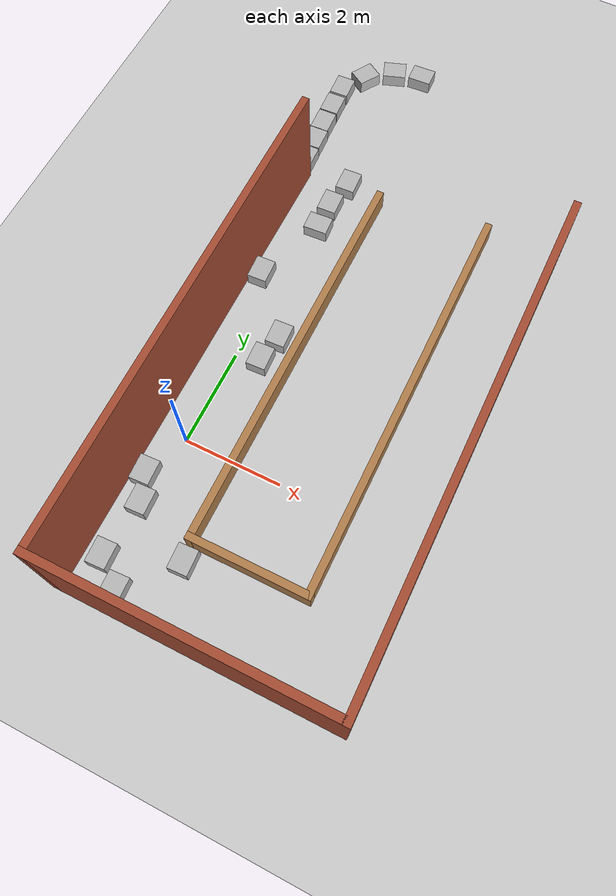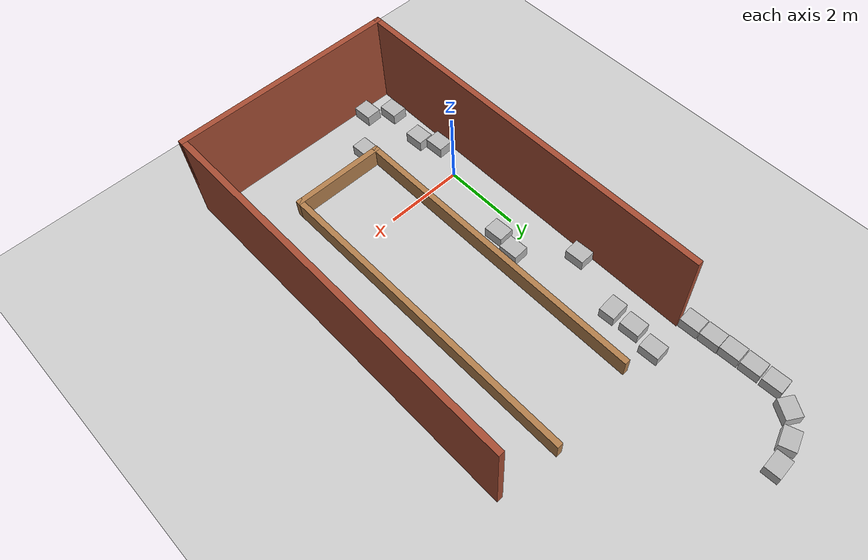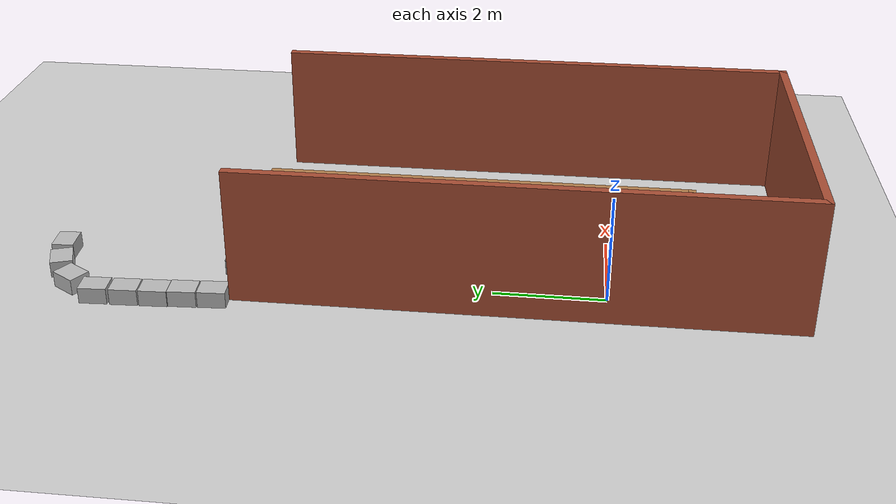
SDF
<sdf version="1.7">
 <world name="default">
  <light name="sun" type="directional">
   <pose>0 0 10 0 -0 0</pose>
   <diffuse>0.8 0.8 0.8 1</diffuse>
   <specular>0.2 0.2 0.2 1</specular>
   <attenuation>
    <range>1000</range>
    <constant>0.9</constant>
    <linear>0.01</linear>
    <quadratic>0.001</quadratic>
   </attenuation>
   <direction>-0.5 0.1 -0.9</direction>
   <spot><inner_angle>0</inner_angle><outer_angle>0</outer_angle><falloff>0</falloff></spot>
  </light>
  <gravity>0 0 -9.8</gravity>
  <magnetic_field>6e-06 2.3e-05 -4.2e-05</magnetic_field>
  <atmosphere type="adiabatic"/>
  <physics type="ode">
   <max_step_size>0.001</max_step_size>
   <real_time_factor>1</real_time_factor>
   <real_time_update_rate>1000</real_time_update_rate>
  </physics>
  <scene><ambient>0.4 0.4 0.4 1</ambient><background>0.7 0.7 0.7 1</background><shadows>1</shadows></scene>
  <spherical_coordinates>
   <surface_model>EARTH_WGS84</surface_model>
   <latitude_deg>0</latitude_deg>
   <longitude_deg>0</longitude_deg>
   <elevation>0</elevation>
   <heading_deg>0</heading_deg>
  </spherical_coordinates>
  <model name="universe">
   <model name="single_line_capstone">
    <static>1</static>
    <link name="link">
     <collision name="collision">
      <geometry><plane><normal>0 0 1</normal><size>500 500</size></plane></geometry>
      <surface><friction><ode><mu>0.5</mu><mu2>0.5</mu2></ode></friction></surface>
     </collision>
     <visual name="visual_0">
      <cast_shadows>0</cast_shadows>
      <geometry><plane><normal>0 0 1</normal><size>20 20</size></plane></geometry>
      <material>
       <script>
        <uri>model://single_line_capstone/materials/scripts</uri>
        <uri>model://single_line_capstone/materials/textures</uri>
        <name>path/kobuki</name>
       </script>
      </material>
     </visual>
    </link>
    <pose>2.79856 1.12607 -0.139655 0 -0 0</pose>
   </model>
   <model name="cardboard_box">
    <pose>-2.07196 3.6347 0.010345 0 0 -1.52548</pose>
    <link name="link">
     <inertial>
      <mass>2</mass>
      <inertia>
       <ixx>0.0416667</ixx>
       <ixy>0</ixy>
       <ixz>0</ixz>
       <iyy>0.0566667</iyy>
       <iyz>0</iyz>
       <izz>0.0683333</izz>
      </inertia>
     </inertial>
     <collision name="collision">
      <geometry><box><size>0.5 0.4 0.3</size></box></geometry>
      <surface>
       <friction><ode><mu>1</mu><mu2>1</mu2></ode></friction>
       <contact><ode><kp>1e+07</kp><kd>1</kd><min_depth>0.001</min_depth><max_vel>0.1</max_vel></ode></contact>
      </surface>
     </collision>
     <visual name="visual">
      <pose>0 0 -0.15 0 -0 0</pose>
      <geometry>
       <mesh><uri>model://cardboard_box/meshes/cardboard_box.dae</uri><scale>1.25932 1.00745 0.755591</scale></mesh>
      </geometry>
     </visual>
    </link>
   </model>
   <model name="cardboard_box_clone">
    <pose>-2.10169 4.15319 0.010345 0 0 -1.52548</pose>
    <link name="link">
     <inertial>
      <mass>2</mass>
      <inertia>
       <ixx>0.0416667</ixx>
       <ixy>0</ixy>
       <ixz>0</ixz>
       <iyy>0.0566667</iyy>
       <iyz>0</iyz>
       <izz>0.0683333</izz>
      </inertia>
     </inertial>
     <collision name="collision">
      <geometry><box><size>0.5 0.4 0.3</size></box></geometry>
      <surface>
       <friction><ode><mu>1</mu><mu2>1</mu2></ode></friction>
       <contact><ode><kp>1e+07</kp><kd>1</kd><min_depth>0.001</min_depth><max_vel>0.1</max_vel></ode></contact>
      </surface>
     </collision>
     <visual name="visual">
      <pose>0 0 -0.15 0 -0 0</pose>
      <geometry>
       <mesh><uri>model://cardboard_box/meshes/cardboard_box.dae</uri><scale>1.25932 1.00745 0.755591</scale></mesh>
      </geometry>
     </visual>
    </link>
   </model>
   <model name="cardboard_box_clone_0">
    <pose>-2.13751 4.65913 0.010345 0 0 -1.52548</pose>
    <link name="link">
     <inertial>
      <mass>2</mass>
      <inertia>
       <ixx>0.0416667</ixx>
       <ixy>0</ixy>
       <ixz>0</ixz>
       <iyy>0.0566667</iyy>
       <iyz>0</iyz>
       <izz>0.0683333</izz>
      </inertia>
     </inertial>
     <collision name="collision">
      <geometry><box><size>0.5 0.4 0.3</size></box></geometry>
      <surface>
       <friction><ode><mu>1</mu><mu2>1</mu2></ode></friction>
       <contact><ode><kp>1e+07</kp><kd>1</kd><min_depth>0.001</min_depth><max_vel>0.1</max_vel></ode></contact>
      </surface>
     </collision>
     <visual name="visual">
      <pose>0 0 -0.15 0 -0 0</pose>
      <geometry>
       <mesh><uri>model://cardboard_box/meshes/cardboard_box.dae</uri><scale>1.25932 1.00745 0.755591</scale></mesh>
      </geometry>
     </visual>
    </link>
   </model>
   <model name="cardboard_box_clone_1">
    <pose>-2.15824 5.18313 0.010345 0 0 -1.52548</pose>
    <link name="link">
     <inertial>
      <mass>2</mass>
      <inertia>
       <ixx>0.0416667</ixx>
       <ixy>0</ixy>
       <ixz>0</ixz>
       <iyy>0.0566667</iyy>
       <iyz>0</iyz>
       <izz>0.0683333</izz>
      </inertia>
     </inertial>
     <collision name="collision">
      <geometry><box><size>0.5 0.4 0.3</size></box></geometry>
      <surface>
       <friction><ode><mu>1</mu><mu2>1</mu2></ode></friction>
       <contact><ode><kp>1e+07</kp><kd>1</kd><min_depth>0.001</min_depth><max_vel>0.1</max_vel></ode></contact>
      </surface>
     </collision>
     <visual name="visual">
      <pose>0 0 -0.15 0 -0 0</pose>
      <geometry>
       <mesh><uri>model://cardboard_box/meshes/cardboard_box.dae</uri><scale>1.25932 1.00745 0.755591</scale></mesh>
      </geometry>
     </visual>
    </link>
   </model>
   <model name="cardboard_box_clone_10">
    <pose>-0.604115 -0.493473 0.010345 0 0 -1.52548</pose>
    <link name="link">
     <inertial>
      <mass>2</mass>
      <inertia>
       <ixx>0.0416667</ixx>
       <ixy>0</ixy>
       <ixz>0</ixz>
       <iyy>0.0566667</iyy>
       <iyz>0</iyz>
       <izz>0.0683333</izz>
      </inertia>
     </inertial>
     <collision name="collision">
      <geometry><box><size>0.5 0.4 0.3</size></box></geometry>
      <surface>
       <friction><ode><mu>1</mu><mu2>1</mu2></ode></friction>
       <contact><ode><kp>1e+07</kp><kd>1</kd><min_depth>0.001</min_depth><max_vel>0.1</max_vel></ode></contact>
      </surface>
     </collision>
     <visual name="visual">
      <pose>0 0 -0.15 0 -0 0</pose>
      <geometry>
       <mesh><uri>model://cardboard_box/meshes/cardboard_box.dae</uri><scale>1.25932 1.00745 0.755591</scale></mesh>
      </geometry>
     </visual>
    </link>
   </model>
   <model name="cardboard_box_clone_11">
    <pose>-0.717084 -1.08752 0.010345 0 0 -1.52548</pose>
    <link name="link">
     <inertial>
      <mass>2</mass>
      <inertia>
       <ixx>0.0416667</ixx>
       <ixy>0</ixy>
       <ixz>0</ixz>
       <iyy>0.0566667</iyy>
       <iyz>0</iyz>
       <izz>0.0683333</izz>
      </inertia>
     </inertial>
     <collision name="collision">
      <geometry><box><size>0.5 0.4 0.3</size></box></geometry>
      <surface>
       <friction><ode><mu>1</mu><mu2>1</mu2></ode></friction>
       <contact><ode><kp>1e+07</kp><kd>1</kd><min_depth>0.001</min_depth><max_vel>0.1</max_vel></ode></contact>
      </surface>
     </collision>
     <visual name="visual">
      <pose>0 0 -0.15 0 -0 0</pose>
      <geometry>
       <mesh><uri>model://cardboard_box/meshes/cardboard_box.dae</uri><scale>1.25932 1.00745 0.755591</scale></mesh>
      </geometry>
     </visual>
    </link>
   </model>
   <model name="cardboard_box_clone_12">
    <pose>-1.56668 -4.08105 0.010345 0 0 -1.52548</pose>
    <link name="link">
     <inertial>
      <mass>2</mass>
      <inertia>
       <ixx>0.0416667</ixx>
       <ixy>0</ixy>
       <ixz>0</ixz>
       <iyy>0.0566667</iyy>
       <iyz>0</iyz>
       <izz>0.0683333</izz>
      </inertia>
     </inertial>
     <collision name="collision">
      <geometry><box><size>0.5 0.4 0.3</size></box></geometry>
      <surface>
       <friction><ode><mu>1</mu><mu2>1</mu2></ode></friction>
       <contact><ode><kp>1e+07</kp><kd>1</kd><min_depth>0.001</min_depth><max_vel>0.1</max_vel></ode></contact>
      </surface>
     </collision>
     <visual name="visual">
      <pose>0 0 -0.15 0 -0 0</pose>
      <geometry>
       <mesh><uri>model://cardboard_box/meshes/cardboard_box.dae</uri><scale>1.25932 1.00745 0.755591</scale></mesh>
      </geometry>
     </visual>
    </link>
   </model>
   <model name="cardboard_box_clone_13">
    <pose>-1.34868 -4.60104 0.010345 0 0 -1.52548</pose>
    <link name="link">
     <inertial>
      <mass>2</mass>
      <inertia>
       <ixx>0.0416667</ixx>
       <ixy>0</ixy>
       <ixz>0</ixz>
       <iyy>0.0566667</iyy>
       <iyz>0</iyz>
       <izz>0.0683333</izz>
      </inertia>
     </inertial>
     <collision name="collision">
      <geometry><box><size>0.5 0.4 0.3</size></box></geometry>
      <surface>
       <friction><ode><mu>1</mu><mu2>1</mu2></ode></friction>
       <contact><ode><kp>1e+07</kp><kd>1</kd><min_depth>0.001</min_depth><max_vel>0.1</max_vel></ode></contact>
      </surface>
     </collision>
     <visual name="visual">
      <pose>0 0 -0.15 0 -0 0</pose>
      <geometry>
       <mesh><uri>model://cardboard_box/meshes/cardboard_box.dae</uri><scale>1.25932 1.00745 0.755591</scale></mesh>
      </geometry>
     </visual>
    </link>
   </model>
   <model name="cardboard_box_clone_14">
    <pose>-0.101543 -5.22181 0.010345 0 0 -1.52548</pose>
    <link name="link">
     <inertial>
      <mass>2</mass>
      <inertia>
       <ixx>0.0416667</ixx>
       <ixy>0</ixy>
       <ixz>0</ixz>
       <iyy>0.0566667</iyy>
       <iyz>0</iyz>
       <izz>0.0683333</izz>
      </inertia>
     </inertial>
     <collision name="collision">
      <geometry><box><size>0.5 0.4 0.3</size></box></geometry>
      <surface>
       <friction><ode><mu>1</mu><mu2>1</mu2></ode></friction>
       <contact><ode><kp>1e+07</kp><kd>1</kd><min_depth>0.001</min_depth><max_vel>0.1</max_vel></ode></contact>
      </surface>
     </collision>
     <visual name="visual">
      <pose>0 0 -0.15 0 -0 0</pose>
      <geometry>
       <mesh><uri>model://cardboard_box/meshes/cardboard_box.dae</uri><scale>1.25932 1.00745 0.755591</scale></mesh>
      </geometry>
     </visual>
    </link>
   </model>
   <model name="cardboard_box_clone_15">
    <pose>-1.4684 -5.7531 0.010345 0 0 -1.52548</pose>
    <link name="link">
     <inertial>
      <mass>2</mass>
      <inertia>
       <ixx>0.0416667</ixx>
       <ixy>0</ixy>
       <ixz>0</ixz>
       <iyy>0.0566667</iyy>
       <iyz>0</iyz>
       <izz>0.0683333</izz>
      </inertia>
     </inertial>
     <collision name="collision">
      <geometry><box><size>0.5 0.4 0.3</size></box></geometry>
      <surface>
       <friction><ode><mu>1</mu><mu2>1</mu2></ode></friction>
       <contact><ode><kp>1e+07</kp><kd>1</kd><min_depth>0.001</min_depth><max_vel>0.1</max_vel></ode></contact>
      </surface>
     </collision>
     <visual name="visual">
      <pose>0 0 -0.15 0 -0 0</pose>
      <geometry>
       <mesh><uri>model://cardboard_box/meshes/cardboard_box.dae</uri><scale>1.25932 1.00745 0.755591</scale></mesh>
      </geometry>
     </visual>
    </link>
   </model>
   <model name="cardboard_box_clone_16">
    <pose>-0.957974 -6.17546 0.010345 0 0 -1.52548</pose>
    <link name="link">
     <inertial>
      <mass>2</mass>
      <inertia>
       <ixx>0.0416667</ixx>
       <ixy>0</ixy>
       <ixz>0</ixz>
       <iyy>0.0566667</iyy>
       <iyz>0</iyz>
       <izz>0.0683333</izz>
      </inertia>
     </inertial>
     <collision name="collision">
      <geometry><box><size>0.5 0.4 0.3</size></box></geometry>
      <surface>
       <friction><ode><mu>1</mu><mu2>1</mu2></ode></friction>
       <contact><ode><kp>1e+07</kp><kd>1</kd><min_depth>0.001</min_depth><max_vel>0.1</max_vel></ode></contact>
      </surface>
     </collision>
     <visual name="visual">
      <pose>0 0 -0.15 0 -0 0</pose>
      <geometry>
       <mesh><uri>model://cardboard_box/meshes/cardboard_box.dae</uri><scale>1.25932 1.00745 0.755591</scale></mesh>
      </geometry>
     </visual>
    </link>
   </model>
   <model name="cardboard_box_clone_2">
    <pose>-2.17427 5.72729 0.010345 0 0 -1.52548</pose>
    <link name="link">
     <inertial>
      <mass>2</mass>
      <inertia>
       <ixx>0.0416667</ixx>
       <ixy>0</ixy>
       <ixz>0</ixz>
       <iyy>0.0566667</iyy>
       <iyz>0</iyz>
       <izz>0.0683333</izz>
      </inertia>
     </inertial>
     <collision name="collision">
      <geometry><box><size>0.5 0.4 0.3</size></box></geometry>
      <surface>
       <friction><ode><mu>1</mu><mu2>1</mu2></ode></friction>
       <contact><ode><kp>1e+07</kp><kd>1</kd><min_depth>0.001</min_depth><max_vel>0.1</max_vel></ode></contact>
      </surface>
     </collision>
     <visual name="visual">
      <pose>0 0 -0.15 0 -0 0</pose>
      <geometry>
       <mesh><uri>model://cardboard_box/meshes/cardboard_box.dae</uri><scale>1.25932 1.00745 0.755591</scale></mesh>
      </geometry>
     </visual>
    </link>
   </model>
   <model name="cardboard_box_clone_3">
    <pose>-1.85164 6.28198 0.010345 0 0 -2.13219</pose>
    <link name="link">
     <inertial>
      <mass>2</mass>
      <inertia>
       <ixx>0.0416667</ixx>
       <ixy>0</ixy>
       <ixz>0</ixz>
       <iyy>0.0566667</iyy>
       <iyz>0</iyz>
       <izz>0.0683333</izz>
      </inertia>
     </inertial>
     <collision name="collision">
      <geometry><box><size>0.5 0.4 0.3</size></box></geometry>
      <surface>
       <friction><ode><mu>1</mu><mu2>1</mu2></ode></friction>
       <contact><ode><kp>1e+07</kp><kd>1</kd><min_depth>0.001</min_depth><max_vel>0.1</max_vel></ode></contact>
      </surface>
     </collision>
     <visual name="visual">
      <pose>0 0 -0.15 0 -0 0</pose>
      <geometry>
       <mesh><uri>model://cardboard_box/meshes/cardboard_box.dae</uri><scale>1.25932 1.00745 0.755591</scale></mesh>
      </geometry>
     </visual>
    </link>
   </model>
   <model name="cardboard_box_clone_4">
    <pose>-1.29977 6.67017 0.010345 0 0 -2.80544</pose>
    <link name="link">
     <inertial>
      <mass>2</mass>
      <inertia>
       <ixx>0.0416667</ixx>
       <ixy>0</ixy>
       <ixz>0</ixz>
       <iyy>0.0566667</iyy>
       <iyz>0</iyz>
       <izz>0.0683333</izz>
      </inertia>
     </inertial>
     <collision name="collision">
      <geometry><box><size>0.5 0.4 0.3</size></box></geometry>
      <surface>
       <friction><ode><mu>1</mu><mu2>1</mu2></ode></friction>
       <contact><ode><kp>1e+07</kp><kd>1</kd><min_depth>0.001</min_depth><max_vel>0.1</max_vel></ode></contact>
      </surface>
     </collision>
     <visual name="visual">
      <pose>0 0 -0.15 0 -0 0</pose>
      <geometry>
       <mesh><uri>model://cardboard_box/meshes/cardboard_box.dae</uri><scale>1.25932 1.00745 0.755591</scale></mesh>
      </geometry>
     </visual>
    </link>
   </model>
   <model name="cardboard_box_clone_5">
    <pose>-0.686239 6.81297 0.010345 0 -0 0.048132</pose>
    <link name="link">
     <inertial>
      <mass>2</mass>
      <inertia>
       <ixx>0.0416667</ixx>
       <ixy>0</ixy>
       <ixz>0</ixz>
       <iyy>0.0566667</iyy>
       <iyz>0</iyz>
       <izz>0.0683333</izz>
      </inertia>
     </inertial>
     <collision name="collision">
      <geometry><box><size>0.5 0.4 0.3</size></box></geometry>
      <surface>
       <friction><ode><mu>1</mu><mu2>1</mu2></ode></friction>
       <contact><ode><kp>1e+07</kp><kd>1</kd><min_depth>0.001</min_depth><max_vel>0.1</max_vel></ode></contact>
      </surface>
     </collision>
     <visual name="visual">
      <pose>0 0 -0.15 0 -0 0</pose>
      <geometry>
       <mesh><uri>model://cardboard_box/meshes/cardboard_box.dae</uri><scale>1.25932 1.00745 0.755591</scale></mesh>
      </geometry>
     </visual>
    </link>
   </model>
   <model name="cardboard_box_clone_6">
    <pose>-0.936316 3.42565 0.010345 0 0 -1.52548</pose>
    <link name="link">
     <inertial>
      <mass>2</mass>
      <inertia>
       <ixx>0.0416667</ixx>
       <ixy>0</ixy>
       <ixz>0</ixz>
       <iyy>0.0566667</iyy>
       <iyz>0</iyz>
       <izz>0.0683333</izz>
      </inertia>
     </inertial>
     <collision name="collision">
      <geometry><box><size>0.5 0.4 0.3</size></box></geometry>
      <surface>
       <friction><ode><mu>1</mu><mu2>1</mu2></ode></friction>
       <contact><ode><kp>1e+07</kp><kd>1</kd><min_depth>0.001</min_depth><max_vel>0.1</max_vel></ode></contact>
      </surface>
     </collision>
     <visual name="visual">
      <pose>0 0 -0.15 0 -0 0</pose>
      <geometry>
       <mesh><uri>model://cardboard_box/meshes/cardboard_box.dae</uri><scale>1.25932 1.00745 0.755591</scale></mesh>
      </geometry>
     </visual>
    </link>
   </model>
   <model name="cardboard_box_clone_7">
    <pose>-1.05827 2.77423 0.010345 0 0 -1.52548</pose>
    <link name="link">
     <inertial>
      <mass>2</mass>
      <inertia>
       <ixx>0.0416667</ixx>
       <ixy>0</ixy>
       <ixz>0</ixz>
       <iyy>0.0566667</iyy>
       <iyz>0</iyz>
       <izz>0.0683333</izz>
      </inertia>
     </inertial>
     <collision name="collision">
      <geometry><box><size>0.5 0.4 0.3</size></box></geometry>
      <surface>
       <friction><ode><mu>1</mu><mu2>1</mu2></ode></friction>
       <contact><ode><kp>1e+07</kp><kd>1</kd><min_depth>0.001</min_depth><max_vel>0.1</max_vel></ode></contact>
      </surface>
     </collision>
     <visual name="visual">
      <pose>0 0 -0.15 0 -0 0</pose>
      <geometry>
       <mesh><uri>model://cardboard_box/meshes/cardboard_box.dae</uri><scale>1.25932 1.00745 0.755591</scale></mesh>
      </geometry>
     </visual>
    </link>
   </model>
   <model name="cardboard_box_clone_8">
    <pose>-1.05361 2.17648 0.010345 0 -0 0.056912</pose>
    <link name="link">
     <inertial>
      <mass>2</mass>
      <inertia>
       <ixx>0.0416667</ixx>
       <ixy>0</ixy>
       <ixz>0</ixz>
       <iyy>0.0566667</iyy>
       <iyz>0</iyz>
       <izz>0.0683333</izz>
      </inertia>
     </inertial>
     <collision name="collision">
      <geometry><box><size>0.5 0.4 0.3</size></box></geometry>
      <surface>
       <friction><ode><mu>1</mu><mu2>1</mu2></ode></friction>
       <contact><ode><kp>1e+07</kp><kd>1</kd><min_depth>0.001</min_depth><max_vel>0.1</max_vel></ode></contact>
      </surface>
     </collision>
     <visual name="visual">
      <pose>0 0 -0.15 0 -0 0</pose>
      <geometry>
       <mesh><uri>model://cardboard_box/meshes/cardboard_box.dae</uri><scale>1.25932 1.00745 0.755591</scale></mesh>
      </geometry>
     </visual>
    </link>
   </model>
   <model name="cardboard_box_clone_9">
    <pose>-1.60676 0.66799 0.010345 0 0 -1.52548</pose>
    <link name="link">
     <inertial>
      <mass>2</mass>
      <inertia>
       <ixx>0.0416667</ixx>
       <ixy>0</ixy>
       <ixz>0</ixz>
       <iyy>0.0566667</iyy>
       <iyz>0</iyz>
       <izz>0.0683333</izz>
      </inertia>
     </inertial>
     <collision name="collision">
      <geometry><box><size>0.5 0.4 0.3</size></box></geometry>
      <surface>
       <friction><ode><mu>1</mu><mu2>1</mu2></ode></friction>
       <contact><ode><kp>1e+07</kp><kd>1</kd><min_depth>0.001</min_depth><max_vel>0.1</max_vel></ode></contact>
      </surface>
     </collision>
     <visual name="visual">
      <pose>0 0 -0.15 0 -0 0</pose>
      <geometry>
       <mesh><uri>model://cardboard_box/meshes/cardboard_box.dae</uri><scale>1.25932 1.00745 0.755591</scale></mesh>
      </geometry>
     </visual>
    </link>
   </model>
   <model name="walls">
    <pose>0.895062 -1.51897 -0.139655 0 0 -1.57079</pose>
    <link name="Wall_0">
     <collision name="Wall_0_Collision">
      <geometry><box><size>10 0.15 2.5</size></box></geometry>
      <pose>0 0 1.25 0 -0 0</pose>
     </collision>
     <visual name="Wall_0_Visual">
      <pose>0 0 1.25 0 -0 0</pose>
      <geometry><box><size>10 0.15 2.5</size></box></geometry>
      <material>
       <script><uri>file://media/materials/scripts/gazebo.material</uri><name>Gazebo/Bricks</name></script>
       <ambient>1 1 1 1</ambient>
      </material>
      <meta><layer>0</layer></meta>
     </visual>
     <pose>0.095089 2.8 0 0 -0 0</pose>
    </link>
    <link name="Wall_2">
     <collision name="Wall_2_Collision">
      <geometry><box><size>5.75 0.15 2.5</size></box></geometry>
      <pose>0 0 1.25 0 -0 0</pose>
     </collision>
     <visual name="Wall_2_Visual">
      <pose>0 0 1.25 0 -0 0</pose>
      <geometry><box><size>5.75 0.15 2.5</size></box></geometry>
      <material>
       <script><uri>file://media/materials/scripts/gazebo.material</uri><name>Gazebo/Bricks</name></script>
       <ambient>1 1 1 1</ambient>
      </material>
      <meta><layer>0</layer></meta>
     </visual>
     <pose>5.02009 0 0 0 -0 -1.5708</pose>
    </link>
    <link name="Wall_3">
     <collision name="Wall_3_Collision">
      <geometry><box><size>10 0.15 2.5</size></box></geometry>
      <pose>0 0 1.25 0 -0 0</pose>
     </collision>
     <visual name="Wall_3_Visual">
      <pose>0 0 1.25 0 -0 0</pose>
      <geometry><box><size>10 0.15 2.5</size></box></geometry>
      <material>
       <script><uri>file://media/materials/scripts/gazebo.material</uri><name>Gazebo/Bricks</name></script>
       <ambient>1 1 1 1</ambient>
      </material>
      <meta><layer>0</layer></meta>
     </visual>
     <pose>0.095089 -2.8 0 0 -0 3.14159</pose>
    </link>
    <link name="Wall_5">
     <collision name="Wall_5_Collision">
      <geometry><box><size>8.5 0.15 0.5</size></box></geometry>
      <pose>0 0 0.25 0 -0 0</pose>
     </collision>
     <visual name="Wall_5_Visual">
      <pose>0 0 0.25 0 -0 0</pose>
      <geometry><box><size>8.5 0.15 0.5</size></box></geometry>
      <material>
       <script><uri>file://media/materials/scripts/gazebo.material</uri><name>Gazebo/Wood</name></script>
       <ambient>1 1 1 1</ambient>
      </material>
      <meta><layer>0</layer></meta>
     </visual>
     <pose>-0.84509 1.30145 0 0 -0 0</pose>
    </link>
    <link name="Wall_7">
     <collision name="Wall_7_Collision">
      <geometry><box><size>2.5 0.15 0.5</size></box></geometry>
      <pose>0 0 0.25 0 -0 0</pose>
     </collision>
     <visual name="Wall_7_Visual">
      <pose>0 0 0.25 0 -0 0</pose>
      <geometry><box><size>2.5 0.15 0.5</size></box></geometry>
      <material>
       <script><uri>file://media/materials/scripts/gazebo.material</uri><name>Gazebo/Wood</name></script>
       <ambient>1 1 1 1</ambient>
      </material>
      <meta><layer>0</layer></meta>
     </visual>
     <pose>3.32991 0.126453 0 0 -0 -1.5708</pose>
    </link>
    <link name="Wall_8">
     <collision name="Wall_8_Collision">
      <geometry><box><size>8.25 0.15 0.5</size></box></geometry>
      <pose>0 0 0.25 0 -0 0</pose>
     </collision>
     <visual name="Wall_8_Visual">
      <pose>0 0 0.25 0 -0 0</pose>
      <geometry><box><size>8.25 0.15 0.5</size></box></geometry>
      <material>
       <script><uri>file://media/materials/scripts/gazebo.material</uri><name>Gazebo/Wood</name></script>
       <ambient>1 1 1 1</ambient>
      </material>
      <meta><layer>0</layer></meta>
     </visual>
     <pose>-0.72009 -1.04855 0 0 -0 3.14159</pose>
    </link>
    <static>1</static>
   </model>
   <static>0</static>
   <pose>1.22992 3.18673 0.139655 0 -0 0</pose>
  </model>
 </world>
</sdf>
